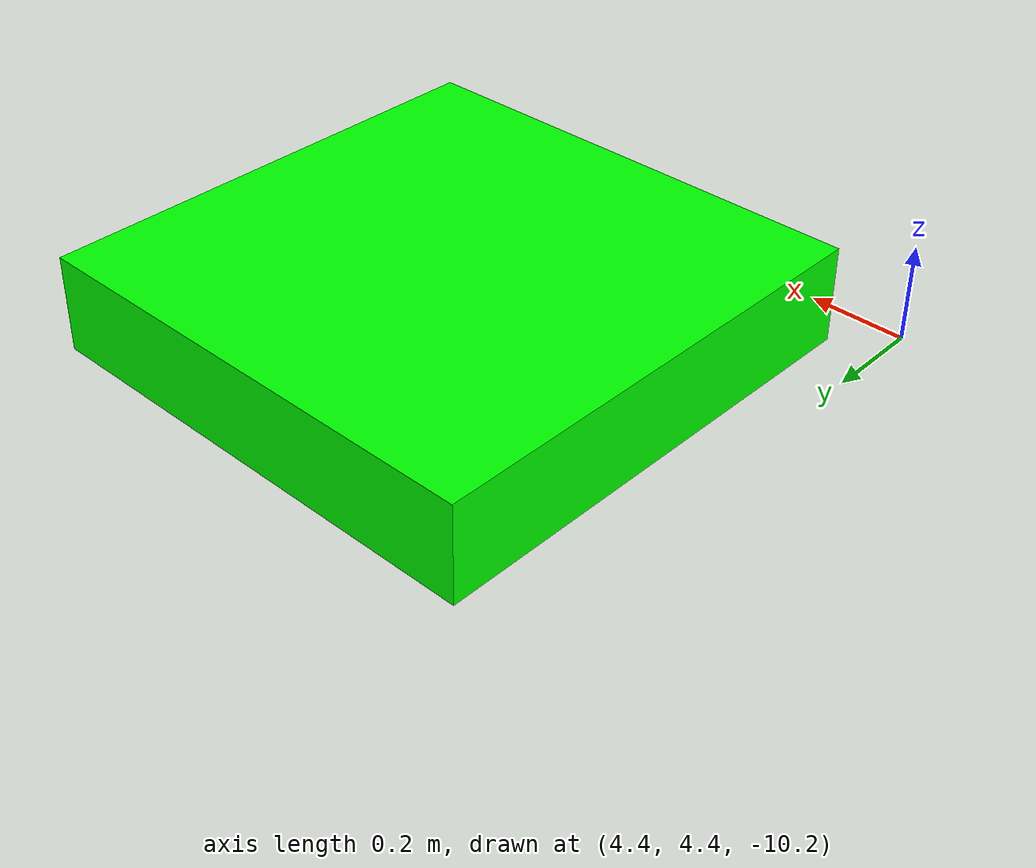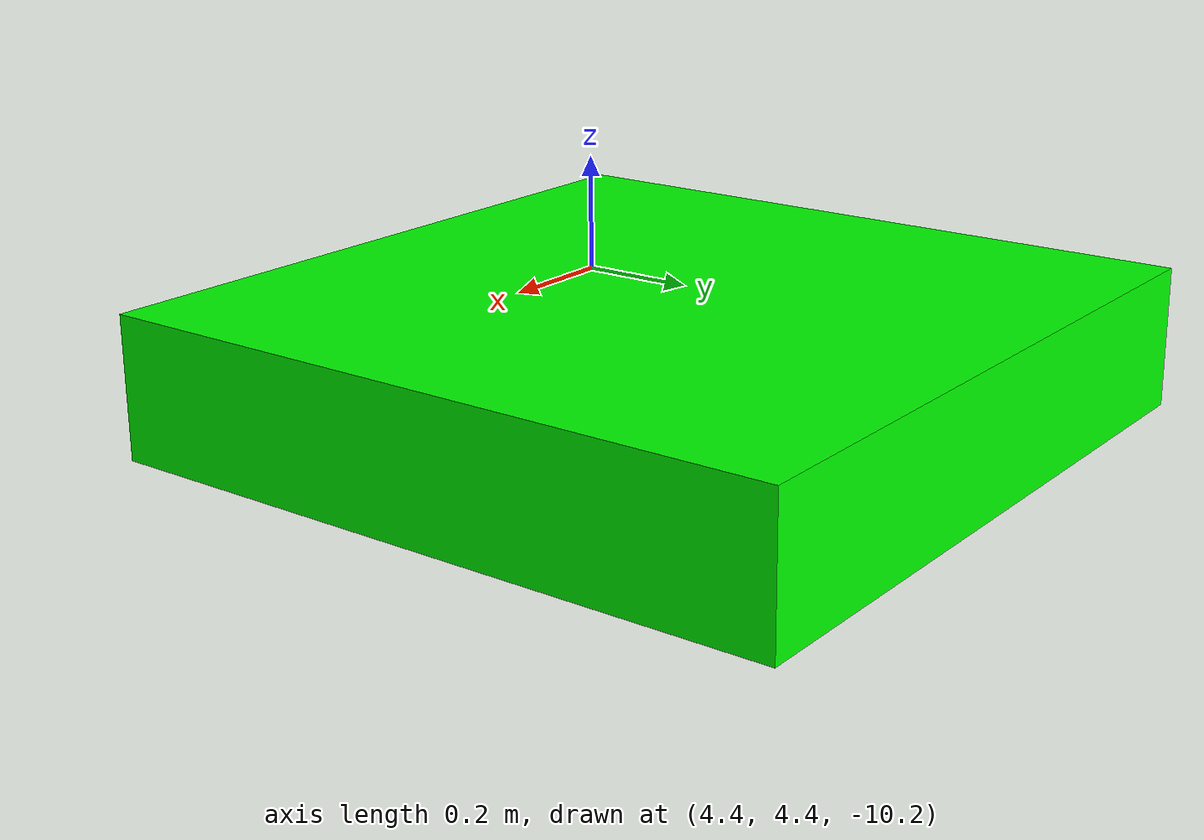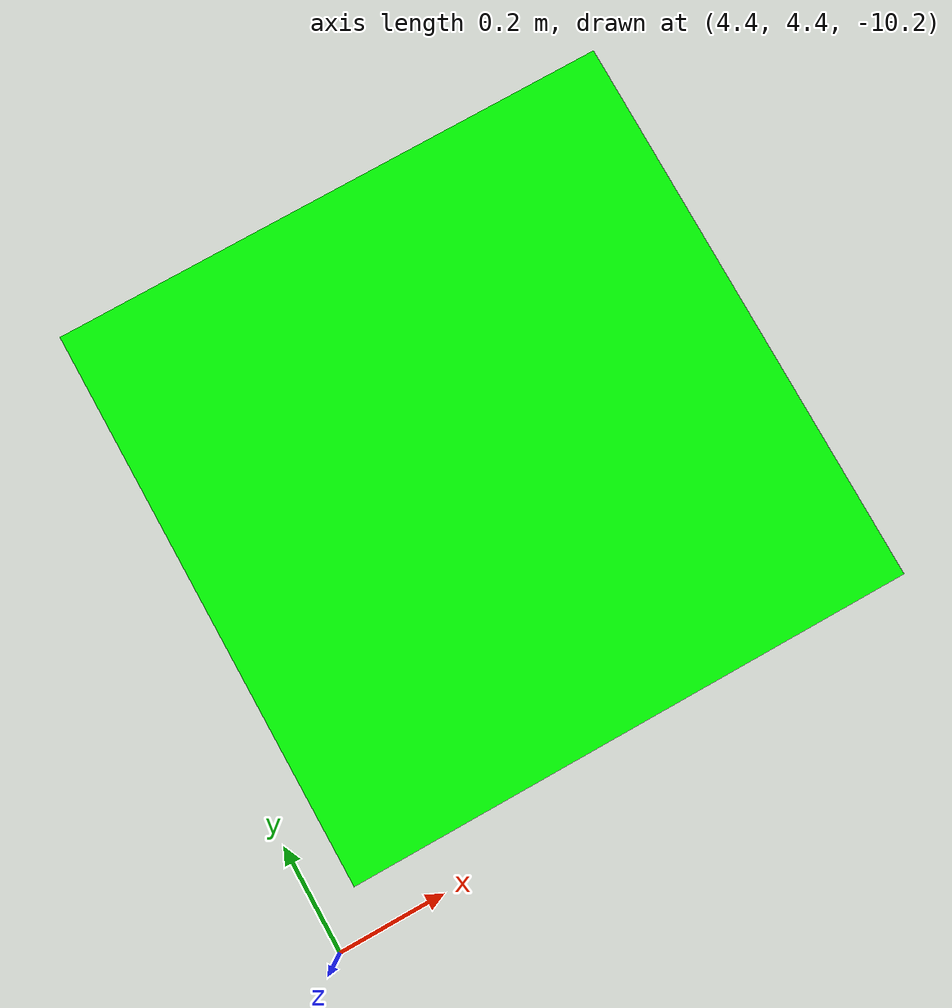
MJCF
<mujoco model="box tile (v0.1)">
    <compiler inertiafromgeom="true" angle="degree"/>
	<option	timestep="0.01" gravity="0 0 -9.81"/>

	<asset>
		<!--material name="MatGnd" specular="1" shininess=".3" reflectance="0" rgba="1 1 1 1" texture="PixelGround" /-->
		<!--material name="MatSpot" specular="1" shininess="0" reflectance="0.5" rgba="1 1 1 1"/-->
		<!--material name="MatInit" rgba=".8 0 0 1"/-->
	</asset>

	<default>
		<geom contype="1" conaffinity="1"/>
	</default>

    <worldbody>
		<body name="box-tile1" pos="5 5 -10">
			<geom type="box" size=".5 .5 .1" pos = "0 0 -.1" rgba="0 1 0 1" />
		</body>
		<body name="box-tile2" pos="5 5 -10">
			<geom type="box" size=".5 .5 .1" pos = "0 0 -.1" rgba="0 1 0 1" />
		</body>
		<body name="box-tile3" pos="5 5 -10">
			<geom type="box" size=".5 .5 .1" pos = "0 0 -.1" rgba="0 1 0 1" />
		</body>
		<body name="box-tile4" pos="5 5 -10">
			<geom type="box" size=".5 .5 .1" pos = "0 0 -.1" rgba="0 1 0 1" />
		</body>
		<body name="box-tile5" pos="5 5 -10">
			<geom type="box" size=".5 .5 .1" pos = "0 0 -.1" rgba="0 1 0 1" />
		</body>
		<body name="box-tile6" pos="5 5 -10">
			<geom type="box" size=".5 .5 .1" pos = "0 0 -.1" rgba="0 1 0 1" />
		</body>
		<body name="box-tile7" pos="5 5 -10">
			<geom type="box" size=".5 .5 .1" pos = "0 0 -.1" rgba="0 1 0 1" />
		</body>
		<body name="box-tile8" pos="5 5 -10">
			<geom type="box" size=".5 .5 .1" pos = "0 0 -.1" rgba="0 1 0 1" />
		</body>
		<body name="box-tile9" pos="5 5 -10">
			<geom type="box" size=".5 .5 .1" pos = "0 0 -.1" rgba="0 1 0 1" />
		</body>
		<body name="box-tile10" pos="5 5 -10">
			<geom type="box" size=".5 .5 .1" pos = "0 0 -.1" rgba="0 1 0 1" />
		</body>
		<body name="box-tile11" pos="5 5 -10">
			<geom type="box" size=".5 .5 .1" pos = "0 0 -.1" rgba="0 1 0 1" />
		</body>
		<body name="box-tile12" pos="5 5 -10">
			<geom type="box" size=".5 .5 .1" pos = "0 0 -.1" rgba="0 1 0 1" />
		</body>
		<body name="box-tile13" pos="5 5 -10">
			<geom type="box" size=".5 .5 .1" pos = "0 0 -.1" rgba="0 1 0 1" />
		</body>
		<body name="box-tile14" pos="5 5 -10">
			<geom type="box" size=".5 .5 .1" pos = "0 0 -.1" rgba="0 1 0 1" />
		</body>
		<body name="box-tile15" pos="5 5 -10">
			<geom type="box" size=".5 .5 .1" pos = "0 0 -.1" rgba="0 1 0 1" />
		</body>
		<body name="box-tile16" pos="5 5 -10">
			<geom type="box" size=".5 .5 .1" pos = "0 0 -.1" rgba="0 1 0 1" />
		</body>
		<body name="box-tile17" pos="5 5 -10">
			<geom type="box" size=".5 .5 .1" pos = "0 0 -.1" rgba="0 1 0 1" />
		</body>
		<body name="box-tile18" pos="5 5 -10">
			<geom type="box" size=".5 .5 .1" pos = "0 0 -.1" rgba="0 1 0 1" />
		</body>
		<body name="box-tile19" pos="5 5 -10">
			<geom type="box" size=".5 .5 .1" pos = "0 0 -.1" rgba="0 1 0 1" />
		</body>
		<body name="box-tile20" pos="5 5 -10">
			<geom type="box" size=".5 .5 .1" pos = "0 0 -.1" rgba="0 1 0 1" />
		</body>
		<body name="box-tile21" pos="5 5 -10">
			<geom type="box" size=".5 .5 .1" pos = "0 0 -.1" rgba="0 1 0 1" />
		</body>
		<body name="box-tile22" pos="5 5 -10">
			<geom type="box" size=".5 .5 .1" pos = "0 0 -.1" rgba="0 1 0 1" />
		</body>
		<body name="box-tile23" pos="5 5 -10">
			<geom type="box" size=".5 .5 .1" pos = "0 0 -.1" rgba="0 1 0 1" />
		</body>
		<body name="box-tile24" pos="5 5 -10">
			<geom type="box" size=".5 .5 .1" pos = "0 0 -.1" rgba="0 1 0 1" />
		</body>
		<body name="box-tile25" pos="5 5 -10">
			<geom type="box" size=".5 .5 .1" pos = "0 0 -.1" rgba="0 1 0 1" />
		</body>
		<body name="box-tile26" pos="5 5 -10">
			<geom type="box" size=".5 .5 .1" pos = "0 0 -.1" rgba="0 1 0 1" />
		</body>
		<body name="box-tile27" pos="5 5 -10">
			<geom type="box" size=".5 .5 .1" pos = "0 0 -.1" rgba="0 1 0 1" />
		</body>
		<body name="box-tile28" pos="5 5 -10">
			<geom type="box" size=".5 .5 .1" pos = "0 0 -.1" rgba="0 1 0 1" />
		</body>
		<body name="box-tile29" pos="5 5 -10">
			<geom type="box" size=".5 .5 .1" pos = "0 0 -.1" rgba="0 1 0 1" />
		</body>
		<body name="box-tile30" pos="5 5 -10">
			<geom type="box" size=".5 .5 .1" pos = "0 0 -.1" rgba="0 1 0 1" />
		</body>
		<body name="box-tile31" pos="5 5 -10">
			<geom type="box" size=".5 .5 .1" pos = "0 0 -.1" rgba="0 1 0 1" />
		</body>
		<body name="box-tile32" pos="5 5 -10">
			<geom type="box" size=".5 .5 .1" pos = "0 0 -.1" rgba="0 1 0 1" />
		</body>
		<body name="box-tile33" pos="5 5 -10">
			<geom type="box" size=".5 .5 .1" pos = "0 0 -.1" rgba="0 1 0 1" />
		</body>
		<body name="box-tile34" pos="5 5 -10">
			<geom type="box" size=".5 .5 .1" pos = "0 0 -.1" rgba="0 1 0 1" />
		</body>
		<body name="box-tile35" pos="5 5 -10">
			<geom type="box" size=".5 .5 .1" pos = "0 0 -.1" rgba="0 1 0 1" />
		</body>
		<body name="box-tile36" pos="5 5 -10">
			<geom type="box" size=".5 .5 .1" pos = "0 0 -.1" rgba="0 1 0 1" />
		</body>
		<body name="box-tile37" pos="5 5 -10">
			<geom type="box" size=".5 .5 .1" pos = "0 0 -.1" rgba="0 1 0 1" />
		</body>
		<body name="box-tile38" pos="5 5 -10">
			<geom type="box" size=".5 .5 .1" pos = "0 0 -.1" rgba="0 1 0 1" />
		</body>
		<body name="box-tile39" pos="5 5 -10">
			<geom type="box" size=".5 .5 .1" pos = "0 0 -.1" rgba="0 1 0 1" />
		</body>
		<body name="box-tile40" pos="5 5 -10">
			<geom type="box" size=".5 .5 .1" pos = "0 0 -.1" rgba="0 1 0 1" />
		</body>
	</worldbody>
</mujoco>
